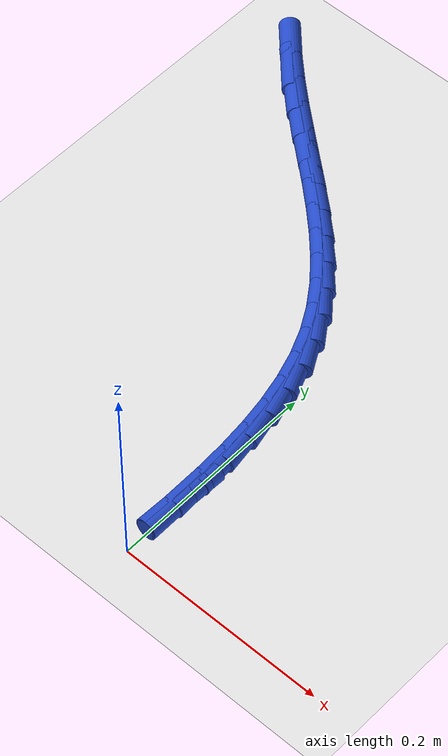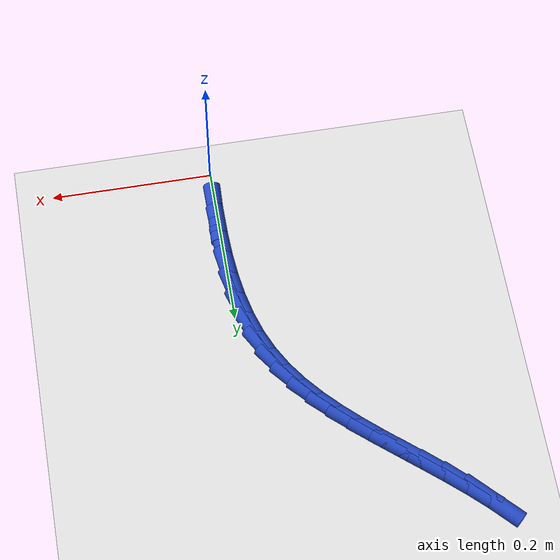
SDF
<sdf version="1.6">
 <world name="default">
  <model name="ground_plane">
   <static>1</static>
   <link name="link">
    <collision name="collision">
     <geometry><plane><normal>0 0 1</normal><size>100 100</size></plane></geometry>
     <surface><friction><ode><mu>100</mu><mu2>50</mu2></ode></friction></surface>
    </collision>
    <visual name="visual">
     <cast_shadows>0</cast_shadows>
     <geometry><plane><normal>0 0 1</normal><size>100 100</size></plane></geometry>
     <material>
      <script><uri>file://media/materials/scripts/gazebo.material</uri><name>Gazebo/WhiteGlow</name></script>
     </material>
    </visual>
   </link>
  </model>
  <model name="line">
   <link name="link_2">
    <pose>0.0017334703667894098 0.05982264918177421 0.01 0 1.57 -1.5616173898954255</pose>
    <collision name="collision">
     <geometry><cylinder><radius>0.01</radius><length>0.08</length></cylinder></geometry>
    </collision>
    <visual name="visual">
     <material>
      <script><name>Gazebo/Blue</name><uri>file://media/materials/scripts/gazebo.material</uri></script>
     </material>
     <geometry><cylinder><radius>0.01</radius><length>0.08</length></cylinder></geometry>
    </visual>
   </link>
   <link name="link_3">
    <pose>0.0014586774453710638 0.0897591447715395 0.01 0 1.57 -1.5240613971402666</pose>
    <collision name="collision">
     <geometry><cylinder><radius>0.01</radius><length>0.08</length></cylinder></geometry>
    </collision>
    <visual name="visual">
     <material>
      <script><name>Gazebo/Blue</name><uri>file://media/materials/scripts/gazebo.material</uri></script>
     </material>
     <geometry><cylinder><radius>0.01</radius><length>0.08</length></cylinder></geometry>
    </visual>
   </link>
   <link name="link_4">
    <pose>7.108973403081777e-05 0.119428116984282 0.01 0 1.57 -1.4763748488246935</pose>
    <collision name="collision">
     <geometry><cylinder><radius>0.01</radius><length>0.08</length></cylinder></geometry>
    </collision>
    <visual name="visual">
     <material>
      <script><name>Gazebo/Blue</name><uri>file://media/materials/scripts/gazebo.material</uri></script>
     </material>
     <geometry><cylinder><radius>0.01</radius><length>0.08</length></cylinder></geometry>
    </visual>
   </link>
   <link name="link_5">
    <pose>-0.002693124807266227 0.14861633778779562 0.01 0 1.57 -1.4174290479311944</pose>
    <collision name="collision">
     <geometry><cylinder><radius>0.01</radius><length>0.08</length></cylinder></geometry>
    </collision>
    <visual name="visual">
     <material>
      <script><name>Gazebo/Blue</name><uri>file://media/materials/scripts/gazebo.material</uri></script>
     </material>
     <geometry><cylinder><radius>0.01</radius><length>0.08</length></cylinder></geometry>
    </visual>
   </link>
   <link name="link_6">
    <pose>-0.007097798218554971 0.17711057914987416 0.01 0 1.57 -1.3459695303603756</pose>
    <collision name="collision">
     <geometry><cylinder><radius>0.01</radius><length>0.08</length></cylinder></geometry>
    </collision>
    <visual name="visual">
     <material>
      <script><name>Gazebo/Blue</name><uri>file://media/materials/scripts/gazebo.material</uri></script>
     </material>
     <geometry><cylinder><radius>0.01</radius><length>0.08</length></cylinder></geometry>
    </visual>
   </link>
   <link name="link_7">
    <pose>-0.013406762539870309 0.20469761303831147 0.01 0 1.57 -1.260826898898076</pose>
    <collision name="collision">
     <geometry><cylinder><radius>0.01</radius><length>0.08</length></cylinder></geometry>
    </collision>
    <visual name="visual">
     <material>
      <script><name>Gazebo/Blue</name><uri>file://media/materials/scripts/gazebo.material</uri></script>
     </material>
     <geometry><cylinder><radius>0.01</radius><length>0.08</length></cylinder></geometry>
    </visual>
   </link>
   <link name="link_8">
    <pose>-0.021883849811247136 0.23116421142090127 0.01 0 1.57 -1.1612822113886632</pose>
    <collision name="collision">
     <geometry><cylinder><radius>0.01</radius><length>0.08</length></cylinder></geometry>
    </collision>
    <visual name="visual">
     <material>
      <script><name>Gazebo/Blue</name><uri>file://media/materials/scripts/gazebo.material</uri></script>
     </material>
     <geometry><cylinder><radius>0.01</radius><length>0.08</length></cylinder></geometry>
    </visual>
   </link>
   <link name="link_9">
    <pose>-0.03279289207272036 0.25629714626543765 0.01 0 1.57 -1.050928193806608</pose>
    <collision name="collision">
     <geometry><cylinder><radius>0.01</radius><length>0.08</length></cylinder></geometry>
    </collision>
    <visual name="visual">
     <material>
      <script><name>Gazebo/Blue</name><uri>file://media/materials/scripts/gazebo.material</uri></script>
     </material>
     <geometry><cylinder><radius>0.01</radius><length>0.08</length></cylinder></geometry>
    </visual>
   </link>
   <link name="link_10">
    <pose>-0.04632335181983484 0.27993581333932704 0.01 0 1.57 -0.9497696811602896</pose>
    <collision name="collision">
     <geometry><cylinder><radius>0.01</radius><length>0.08</length></cylinder></geometry>
    </collision>
    <visual name="visual">
     <material>
      <script><name>Gazebo/Blue</name><uri>file://media/materials/scripts/gazebo.material</uri></script>
     </material>
     <geometry><cylinder><radius>0.01</radius><length>0.08</length></cylinder></geometry>
    </visual>
   </link>
   <link name="link_11">
    <pose>-0.06225784713813789 0.30220749102176536 0.01 0 1.57 -0.865689769817296</pose>
    <collision name="collision">
     <geometry><cylinder><radius>0.01</radius><length>0.08</length></cylinder></geometry>
    </collision>
    <visual name="visual">
     <material>
      <script><name>Gazebo/Blue</name><uri>file://media/materials/scripts/gazebo.material</uri></script>
     </material>
     <geometry><cylinder><radius>0.01</radius><length>0.08</length></cylinder></geometry>
    </visual>
   </link>
   <link name="link_12">
    <pose>-0.08024057655857325 0.32333740320114723 0.01 0 1.57 -0.7988951021014247</pose>
    <collision name="collision">
     <geometry><cylinder><radius>0.01</radius><length>0.08</length></cylinder></geometry>
    </collision>
    <visual name="visual">
     <material>
      <script><name>Gazebo/Blue</name><uri>file://media/materials/scripts/gazebo.material</uri></script>
     </material>
     <geometry><cylinder><radius>0.01</radius><length>0.08</length></cylinder></geometry>
    </visual>
   </link>
   <link name="link_13">
    <pose>-0.09991562335821562 0.34355085531936547 0.01 0 1.57 -0.7486761550408071</pose>
    <collision name="collision">
     <geometry><cylinder><radius>0.01</radius><length>0.08</length></cylinder></geometry>
    </collision>
    <visual name="visual">
     <material>
      <script><name>Gazebo/Blue</name><uri>file://media/materials/scripts/gazebo.material</uri></script>
     </material>
     <geometry><cylinder><radius>0.01</radius><length>0.08</length></cylinder></geometry>
    </visual>
   </link>
   <link name="link_14">
    <pose>-0.12092707081413981 0.3630731528183128 0.01 0 1.57 -0.7140069344762455</pose>
    <collision name="collision">
     <geometry><cylinder><radius>0.01</radius><length>0.08</length></cylinder></geometry>
    </collision>
    <visual name="visual">
     <material>
      <script><name>Gazebo/Blue</name><uri>file://media/materials/scripts/gazebo.material</uri></script>
     </material>
     <geometry><cylinder><radius>0.01</radius><length>0.08</length></cylinder></geometry>
    </visual>
   </link>
   <link name="link_15">
    <pose>-0.14291900220342058 0.3821296011398818 0.01 0 1.57 -0.6939241642197241</pose>
    <collision name="collision">
     <geometry><cylinder><radius>0.01</radius><length>0.08</length></cylinder></geometry>
    </collision>
    <visual name="visual">
     <material>
      <script><name>Gazebo/Blue</name><uri>file://media/materials/scripts/gazebo.material</uri></script>
     </material>
     <geometry><cylinder><radius>0.01</radius><length>0.08</length></cylinder></geometry>
    </visual>
   </link>
   <link name="link_16">
    <pose>-0.1655355008031327 0.4009455057259656 0.01 0 1.57 -0.687727375319172</pose>
    <collision name="collision">
     <geometry><cylinder><radius>0.01</radius><length>0.08</length></cylinder></geometry>
    </collision>
    <visual name="visual">
     <material>
      <script><name>Gazebo/Blue</name><uri>file://media/materials/scripts/gazebo.material</uri></script>
     </material>
     <geometry><cylinder><radius>0.01</radius><length>0.08</length></cylinder></geometry>
    </visual>
   </link>
   <link name="link_17">
    <pose>-0.1884206498903509 0.41974617201845654 0.01 0 1.57 -0.6950617150823086</pose>
    <collision name="collision">
     <geometry><cylinder><radius>0.01</radius><length>0.08</length></cylinder></geometry>
    </collision>
    <visual name="visual">
     <material>
      <script><name>Gazebo/Blue</name><uri>file://media/materials/scripts/gazebo.material</uri></script>
     </material>
     <geometry><cylinder><radius>0.01</radius><length>0.08</length></cylinder></geometry>
    </visual>
   </link>
   <link name="link_18">
    <pose>-0.21121853274215002 0.43875690545924756 0.01 0 1.57 -0.7159278931651797</pose>
    <collision name="collision">
     <geometry><cylinder><radius>0.01</radius><length>0.08</length></cylinder></geometry>
    </collision>
    <visual name="visual">
     <material>
      <script><name>Gazebo/Blue</name><uri>file://media/materials/scripts/gazebo.material</uri></script>
     </material>
     <geometry><cylinder><radius>0.01</radius><length>0.08</length></cylinder></geometry>
    </visual>
   </link>
   <link name="link_19">
    <pose>-0.23357323263560484 0.4582030114902314 0.01 0 1.57 -0.7506370095609386</pose>
    <collision name="collision">
     <geometry><cylinder><radius>0.01</radius><length>0.08</length></cylinder></geometry>
    </collision>
    <visual name="visual">
     <material>
      <script><name>Gazebo/Blue</name><uri>file://media/materials/scripts/gazebo.material</uri></script>
     </material>
     <geometry><cylinder><radius>0.01</radius><length>0.08</length></cylinder></geometry>
    </visual>
   </link>
   <link name="link_20">
    <pose>-0.25512883284779003 0.47830979555330083 0.01 0 1.57 -0.7997034398308498</pose>
    <collision name="collision">
     <geometry><cylinder><radius>0.01</radius><length>0.08</length></cylinder></geometry>
    </collision>
    <visual name="visual">
     <material>
      <script><name>Gazebo/Blue</name><uri>file://media/materials/scripts/gazebo.material</uri></script>
     </material>
     <geometry><cylinder><radius>0.01</radius><length>0.08</length></cylinder></geometry>
    </visual>
   </link>
   <link name="link_242">
    <pose>0.0021737098572646705 0.060149689739239 0.01 0 1.57 1.534673707809452</pose>
    <collision name="collision">
     <geometry><cylinder><radius>0.01</radius><length>0.08</length></cylinder></geometry>
    </collision>
    <visual name="visual">
     <material>
      <script><name>Gazebo/Blue</name><uri>file://media/materials/scripts/gazebo.material</uri></script>
     </material>
     <geometry><cylinder><radius>0.01</radius><length>0.08</length></cylinder></geometry>
    </visual>
   </link>
  </model>
 </world>
</sdf>
